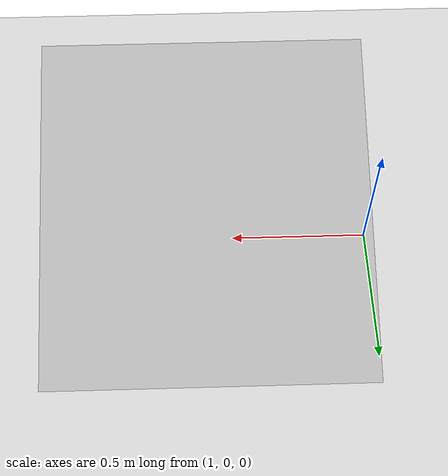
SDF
<sdf version='1.7'>
  <world name='default'>
    <light name='sun' type='directional'>
      <cast_shadows>1</cast_shadows>
      <pose>0 0 10 0 -0 0</pose>
      <diffuse>0.8 0.8 0.8 1</diffuse>
      <specular>0.2 0.2 0.2 1</specular>
      <attenuation>
        <range>1000</range>
        <constant>0.9</constant>
        <linear>0.01</linear>
        <quadratic>0.001</quadratic>
      </attenuation>
      <direction>-0.5 0.1 -0.9</direction>
      <spot>
        <inner_angle>0</inner_angle>
        <outer_angle>0</outer_angle>
        <falloff>0</falloff>
      </spot>
    </light>
    <model name='ground_plane'>
      <static>1</static>
      <link name='link'>
        <collision name='collision'>
          <geometry>
            <plane>
              <normal>0 0 1</normal>
              <size>100 100</size>
            </plane>
          </geometry>
          <surface>
            <contact>
              <collide_bitmask>65535</collide_bitmask>
              <ode/>
            </contact>
            <friction>
              <ode>
                <mu>100</mu>
                <mu2>50</mu2>
              </ode>
              <torsional>
                <ode/>
              </torsional>
            </friction>
            <bounce/>
          </surface>
          <max_contacts>10</max_contacts>
        </collision>
        <visual name='visual'>
          <cast_shadows>0</cast_shadows>
          <geometry>
            <plane>
              <normal>0 0 1</normal>
              <size>100 100</size>
            </plane>
          </geometry>
          <material>
            <script>
              <uri>file://media/materials/scripts/gazebo.material</uri>
              <name>Gazebo/Grey</name>
            </script>
          </material>
        </visual>
        <self_collide>0</self_collide>
        <enable_wind>0</enable_wind>
        <kinematic>0</kinematic>
      </link>
    </model>
    <gravity>0 0 -9.8</gravity>
    <magnetic_field>6e-06 2.3e-05 -4.2e-05</magnetic_field>
    <atmosphere type='adiabatic'/>
    <physics type='ode'>
      <max_step_size>0.001</max_step_size>
      <real_time_factor>1</real_time_factor>
      <real_time_update_rate>1000</real_time_update_rate>
    </physics>
    <scene>
      <ambient>0.4 0.4 0.4 1</ambient>
      <background>0.7 0.7 0.7 1</background>
      <shadows>1</shadows>
    </scene>
    <wind/>
    <spherical_coordinates>
      <surface_model>EARTH_WGS84</surface_model>
      <latitude_deg>0</latitude_deg>
      <longitude_deg>0</longitude_deg>
      <elevation>0</elevation>
      <heading_deg>0</heading_deg>
    </spherical_coordinates>
    <model name='20degramp'>
      <static>1</static>
      <pose>2.2 0.6 0 0 -0 1.57</pose>
      <link name='link'>
        <collision name='collision'>
          <geometry>
            <mesh>
              <scale>0.001 0.001 0.001</scale>
              <uri>model://20degramp/20degramp.stl</uri>
            </mesh>
          </geometry>
          <surface>
            <friction>
              <ode>
                <mu>1.2</mu>
                <mu2>1.2</mu2>
              </ode>
              <torsional>
                <ode/>
              </torsional>
            </friction>
            <contact>
              <ode/>
            </contact>
            <bounce/>
          </surface>
          <max_contacts>10</max_contacts>
        </collision>
        <visual name='visual'>
          <geometry>
            <mesh>
              <scale>0.001 0.001 0.001</scale>
              <uri>model://20degramp/20degramp.stl</uri>
            </mesh>
          </geometry>
        </visual>
        <self_collide>0</self_collide>
        <enable_wind>0</enable_wind>
        <kinematic>0</kinematic>
      </link>
    </model>
  </world>
</sdf>
